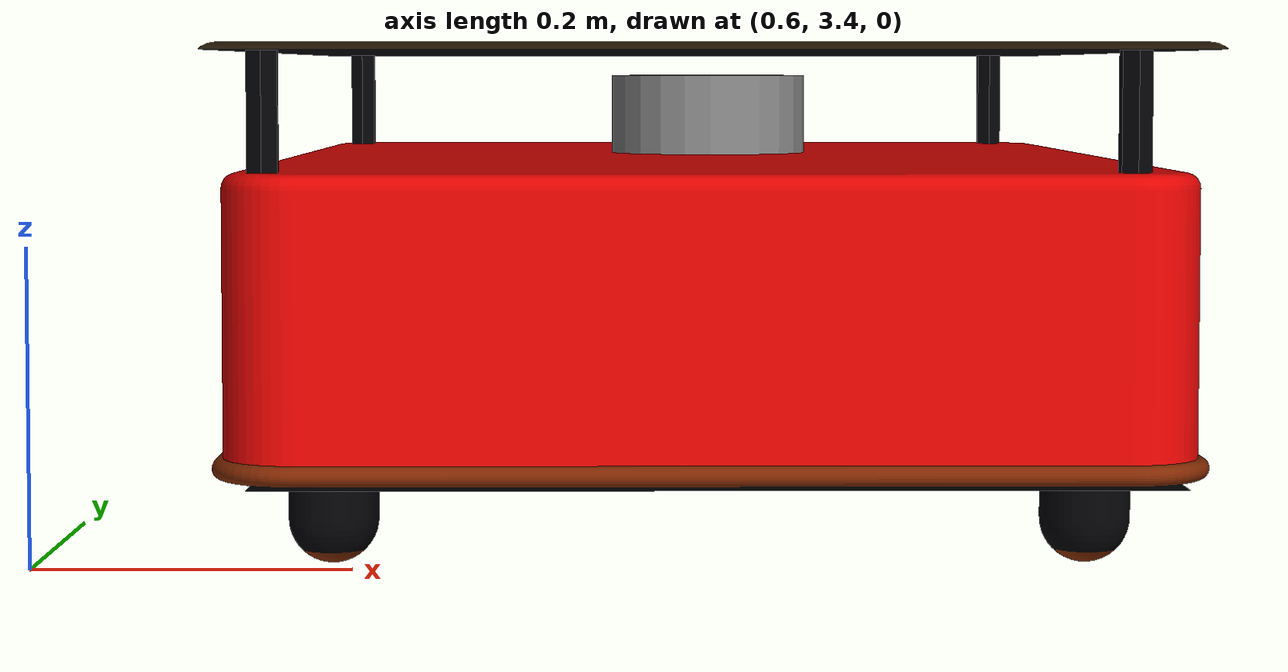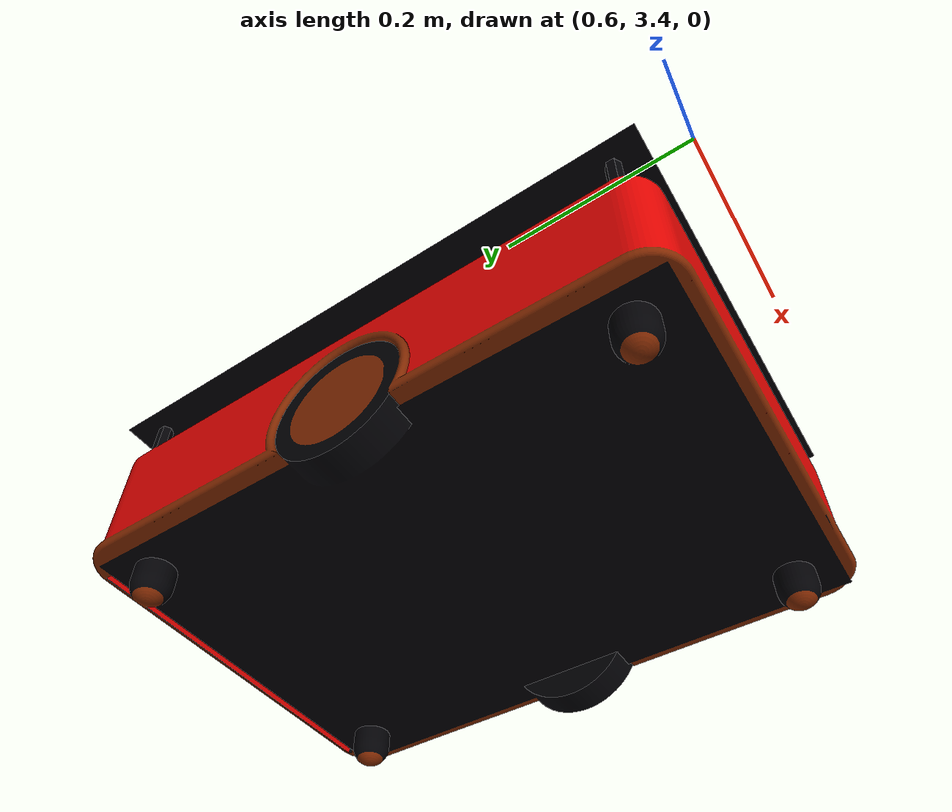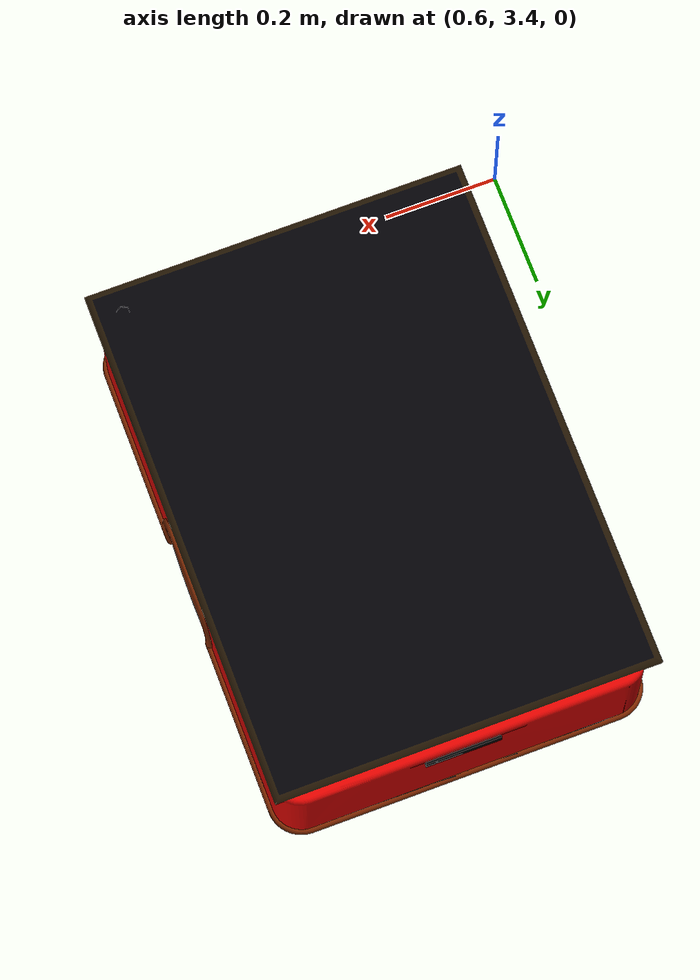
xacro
<?xml version="1.0"?>
<robot xmlns:xacro="http://www.ros.org/wiki/xacro" name="alpha_bot">

    <xacro:property name="chassis_mass" value="70"/>
    <xacro:property name="chassis_length" value="0.9"/>
    <xacro:property name="chassis_width" value="0.64"/>
    <xacro:property name="chassis_height" value="0.19"/>

    <xacro:property name="traction_wheel_mass" value="1"/>
    <xacro:property name="traction_wheel_base" value="0.88"/>
    <xacro:property name="traction_max_wheel_torque" value="20000"/>
    <xacro:property name="traction_wheel_friction" value="5.0"/>

    <xacro:property name="trolley_wheel_mass" value="0.1"/>
    <xacro:property name="trolley_track_width" value="0.54"/>
    <xacro:property name="trolley_wheel_friction" value="0.0"/>
    <xacro:property name="trolley_wheel_radius" value="0.06"/>

    <xacro:property name="eps" value="0.002"/>

    <xacro:property name="traction_wheel_radius" value="0.1"/>
    <xacro:property name="traction_wheel_width" value="0.05"/>
    <xacro:property name="traction_track_width" value="0.6"/>

    <xacro:property name="two_d_lidar_update_rate" value="30"/>
    <xacro:property name="two_d_lidar_sample_size" value="361"/>
    <xacro:property name="two_d_lidar_min_angle" value="0"/>
    <xacro:property name="two_d_lidar_max_angle" value="360"/>
    <xacro:property name="two_d_lidar_min_range" value="0.12"/>
    <xacro:property name="two_d_lidar_max_range" value="16"/>

    <xacro:property name="camera_baseline" value="0.06"/>
    <xacro:property name="camera_height" value="0.10"/>
    <xacro:property name="camera_horizontal_fov" value="60"/>

    <xacro:arg name="robot_namespace" default=""/>
    <xacro:arg name="wheel_odom_topic" default="odom" />
    <xacro:arg name="camera_enabled" default="true" />
    <xacro:arg name="stereo_camera_enabled" default="false" />
    <xacro:arg name="two_d_lidar_enabled" default="true" />
    <xacro:arg name="publish_wheel_odom_tf" default="true" />
    <xacro:arg name="conveyor_enabled" default="false"/>
    <xacro:arg name="ground_truth_frame" default="map"/>
    <xacro:arg name="sim_gazebo" default="true" />
    <xacro:arg name="sim_ign" default="false" />
    <xacro:arg name="sim_gz" default="false" />
    <xacro:arg name="odometry_source" default="world" />

    <xacro:property name="odometry_source" value="$(arg odometry_source)"/>

    <xacro:include filename="$(find alphabot_description)/urdf/materials.xacro"/>
    <xacro:include filename="$(find alphabot_description)/urdf/macros.xacro"/>

    <xacro:include filename="$(find alphabot_description)/urdf/gazebo.xacro"/>

    <link name="base_footprint"/>

    <link name="link_base"/>

    <joint name="base_joint" type="fixed">
        <parent link="base_footprint"/>
        <child link="link_base"/>
        <origin xyz="1.035312 3.917791 ${chassis_height/2 + traction_wheel_radius}" rpy="0 0 1.57" />
    </joint>

    <link name="chassis_link">

        <collision>
            <origin xyz="0 0 -0.05" rpy="0 0 0" />
            <geometry>
                <box size="${chassis_length} ${chassis_width} ${chassis_height}"/>
            </geometry>
        </collision>

        <visual>
            <origin xyz="0 0 -0.205" rpy="0 0 0" />
            <geometry>
                <mesh filename="file://$(find alphabot_description)/meshes/chassy.dae" scale="1 1 1"/>
            </geometry>
        </visual>

        <inertial>
            <mass value="${chassis_mass}" />
            <xacro:box_inertia m="${chassis_mass}" x="${chassis_length}" y="${chassis_width}" z = "${chassis_height}"/>
        </inertial>

    </link>

    <joint name="chassis_joint" type="fixed">
        <parent link="link_base"/>
        <child link="chassis_link"/>
        <origin xyz="0.0 0 0" rpy="0 0 0.0" />
    </joint>

    <xacro:trolley_wheel cardinality="front" dexterity="left" origin_x="${chassis_length/2}" origin_y="${trolley_track_width/2}" origin_z="-${trolley_wheel_radius+chassis_height/2}"/>
    <xacro:trolley_wheel cardinality="front" dexterity="right" origin_x="${chassis_length/2}" origin_y="-${trolley_track_width/2}" origin_z="-${trolley_wheel_radius+chassis_height/2}"/>

    <xacro:trolley_wheel cardinality="back" dexterity="left" origin_x="-${chassis_length/2}" origin_y="${trolley_track_width/2}" origin_z="-${trolley_wheel_radius+chassis_height/2}"/>
    <xacro:trolley_wheel cardinality="back" dexterity="right" origin_x="-${chassis_length/2}" origin_y="-${trolley_track_width/2}" origin_z="-${trolley_wheel_radius+chassis_height/2}"/>

    <xacro:traction_wheel cardinality="middle" dexterity="left" origin_x="0" origin_y="${traction_track_width/2}" origin_z="-${chassis_height/2+2*trolley_wheel_radius+eps-traction_wheel_radius}"/>
    <xacro:traction_wheel cardinality="middle" dexterity="right" origin_x="0" origin_y="-${traction_track_width/2}" origin_z="-${chassis_height/2+2*trolley_wheel_radius+eps-traction_wheel_radius}"/>

    <xacro:if value="$(arg two_d_lidar_enabled)">

        <link name="two_d_lidar">
            <collision>
                <origin xyz="0 0 0" rpy="0 0 0" />
                <geometry>
                    <cylinder length="0.06" radius="0.075"/>
                </geometry>
            </collision>

            <visual>
                <origin xyz="0 0 0" rpy="0 0 0" />
                <geometry>
                    <cylinder length="0.06" radius="0.075"/>
                </geometry>
                <material name="aluminium"/>
            </visual>

            <inertial>
                <origin xyz="0 0 0" rpy="0 0 0" />
                <mass value="0.1"/>
                <xacro:cylinder_inertia m="0.1" r="0.075" h="0.06"/>
            </inertial>
        </link>

        <joint name="two_d_lidar_joint" type="fixed">
            <parent link="link_base"/>
            <child link="two_d_lidar"/>
            <origin xyz="0.0 0 0.08" rpy="0 0 0" />
        </joint>

        <gazebo reference="two_d_lidar">
            <material>Gazebo/White</material>
        </gazebo>

    </xacro:if>

    <link name="imu_frame"/>

    <joint name="imu_joint" type="fixed">
        <parent link="link_base"/>
        <child link="imu_frame"/>
        <origin xyz="0.0 0.0 0.08" rpy="0.0 0.0 0.0"/>
    </joint>

    <xacro:if value="$(arg camera_enabled)">

        <link name="kinect_camera">

            <collision>
                <origin xyz="0 0 0" rpy="0 0 0" />
                <geometry>
                    <box size="0.07 0.3 0.09"/>
                </geometry>
            </collision>

            <visual>
                <origin xyz="0 0 0" rpy="0 0 0" />
                <geometry>
                    <mesh filename="file://$(find alphabot_description)/meshes/kinect/d415.dae"/>
                </geometry>
                <material name="black"/>
            </visual>

            <inertial>
                <mass value="0.01"/>
                <xacro:box_inertia m="0.01" x="0.07" y="0.3" z = "0.09"/>
            </inertial>

        </link>

        <joint name="kinect_camera_joint" type="fixed">
            <origin rpy="0 0 0" xyz="${chassis_length/2} 0 ${chassis_height/7}"/>
            <parent link="link_base"/>
            <child link="kinect_camera"/>
        </joint>

        <link name="kinect_camera_optical"/>

        <joint name="kinect_camera_optical_joint" type="fixed">
            <origin xyz="0 0 0" rpy="${-pi/2} 0 ${-pi/2}"/>
            <parent link="kinect_camera"/>
            <child link="kinect_camera_optical"/>
        </joint>

    </xacro:if>

    <link name="roof_link">

        <collision>
            <origin xyz="0 0 0" rpy="0 0 0" />
            <geometry>
                <box size="${chassis_length} ${chassis_width} 0.015"/>
            </geometry>
        </collision>

        <inertial>
            <mass value="1"/>
            <xacro:box_inertia m="1" x="1" y="0.6" z = "0.015"/>
        </inertial>

    </link>

    <joint name="roof joint" type="fixed">
        <parent link="chassis_link"/>
        <child link="roof_link"/>
        <origin xyz="0 0 0.16" rpy="0 0 0" />
    </joint>

</robot>

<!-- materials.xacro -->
<robot xmlns:xacro="http://www.ros.org/wiki/xacro" name="alpha_bot">

    <material name="black">
        <color rgba="0.0 0.0 0.0 1.0"/>
    </material>

    <material name="blue">
        <color rgba="0.0 0.0 0.8 1.0"/>
    </material>

    <material name="green">
        <color rgba="0.0 0.8 0.0 1.0"/>
    </material>

    <material name="yellow">
        <color rgba="1.0 1.0 0.0 1.0"/>
    </material>

    <material name="dark_grey">
        <color rgba="0.2 0.2 0.2 1.0"/>
    </material>

    <material name="orange">
        <color rgba="${255/255} ${108/255} ${10/255} 1.0"/>
    </material>

    <material name="brown">
        <color rgba="${139/255} ${69/255} ${19/255} 1.0"/>
    </material>

    <material name="red">
        <color rgba="0.8 0.0 0.0 1.0"/>
    </material>

    <material name="turquoise">
        <color rgba="${64/255} ${224/255} ${208/255} 1.0"/>
    </material>

    <material name="purple">
        <color rgba="${128/255} ${0/255} ${128/255} 1.0"/>
    </material>

    <material name="white">
        <color rgba="1.0 1.0 1.0 1.0"/>
    </material>

    <material name="aluminium">
        <color rgba="0.5 0.5 0.5 1"/>
    </material>

    <material name="plastic">
        <color rgba="0.1 0.1 0.1 1"/>
    </material>

</robot>

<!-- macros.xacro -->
<robot xmlns:xacro="http://www.ros.org/wiki/xacro" name="alpha_bot">

    <xacro:macro name="cylinder_inertia" params="m r h">
        <inertia ixx="${m * (3 * r * r + h * h) / 12}" ixy="0" ixz="0" iyy="${m * (3 * r * r + h * h) / 12}" iyz="0" izz="${m * r * r / 2}" />
    </xacro:macro>

    <xacro:macro name="box_inertia" params="m x y z">
        <inertia ixx="${m * (y * y + z * z) / 12}" ixy="0" ixz="0" iyy="${m * (x * x + z * z) / 12}" iyz="0" izz="${m * (y * y + x * x) / 12}" />
    </xacro:macro>

    <xacro:macro name="sphere_inertia" params="m r">
        <inertia ixx="${2 * m * r * r / 5}" ixy="0" ixz="0" iyy="${2 * m * r * r / 5}" iyz="0" izz="${2 * m * r * r / 5}" />
    </xacro:macro>

    <xacro:macro name="trolley_wheel" params="cardinality dexterity origin_x origin_y origin_z">
        <link name="${cardinality}_${dexterity}_wheel">
            <collision>
                <origin xyz="0 0 0" rpy="0 ${pi/2} ${pi/2}" />
                <geometry>
                    <sphere radius="${trolley_wheel_radius}"/>
                </geometry>
            </collision>

            <inertial>
                <origin xyz="0 0 0" rpy="0 0 0" />
                <mass value="${trolley_wheel_mass}"/>
                <xacro:sphere_inertia m="${trolley_wheel_mass}" r="${trolley_wheel_radius}"/>
            </inertial>

            <mu>0.0</mu>
        </link>

        <joint name="${cardinality}_${dexterity}_wheel_joint" type="fixed">
            <parent link="chassis_link"/>
            <child link="${cardinality}_${dexterity}_wheel"/>
            <origin xyz="${origin_x} ${origin_y} ${origin_z}" rpy="0 0 0" />
            <axis xyz="0 1 0" rpy="0 0 0" />
        </joint>

        <gazebo reference="${cardinality}_${dexterity}_wheel">
            <material>Gazebo/Black</material>
        </gazebo>
    </xacro:macro>

    <xacro:macro name="traction_wheel" params="cardinality dexterity origin_x origin_y origin_z">
        <link name="${cardinality}_${dexterity}_wheel">
            <collision>
                <origin xyz="0 0 0" rpy="0 ${pi/2} ${pi/2}" />
                <geometry>
                    <cylinder length="${traction_wheel_width}" radius="${traction_wheel_radius}"/>
                </geometry>
                <self_collide>false</self_collide>
            </collision>

            <inertial>
                <origin xyz="0 0 0" rpy="0 ${pi/2} ${pi/2}" />
                <mass value="${traction_wheel_mass}"/>
                <xacro:cylinder_inertia m="${traction_wheel_mass}" r="${traction_wheel_radius}" h="${traction_wheel_width}"/>
            </inertial>

            <mu>5.0</mu>
        </link>

        <joint name="${cardinality}_${dexterity}_wheel_joint" type="continuous">
            <parent link="chassis_link"/>
            <child link="${cardinality}_${dexterity}_wheel"/>
            <origin xyz="${origin_x} ${origin_y} ${origin_z}" rpy="0 0 0" />
            <axis xyz="0 1 0" rpy="0 0 0" />
        </joint>

        <gazebo reference="${cardinality}_${dexterity}_wheel">
            <material>Gazebo/Black</material>
        </gazebo>
    </xacro:macro>

</robot>
